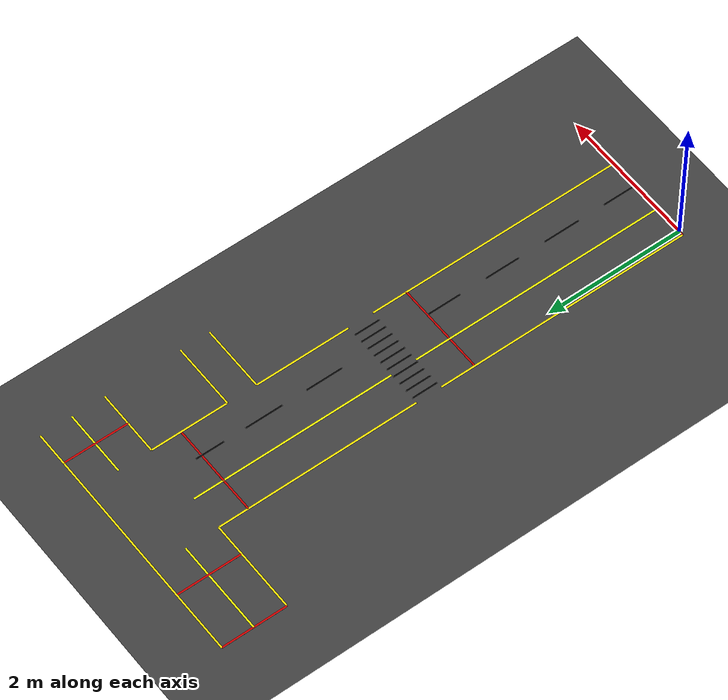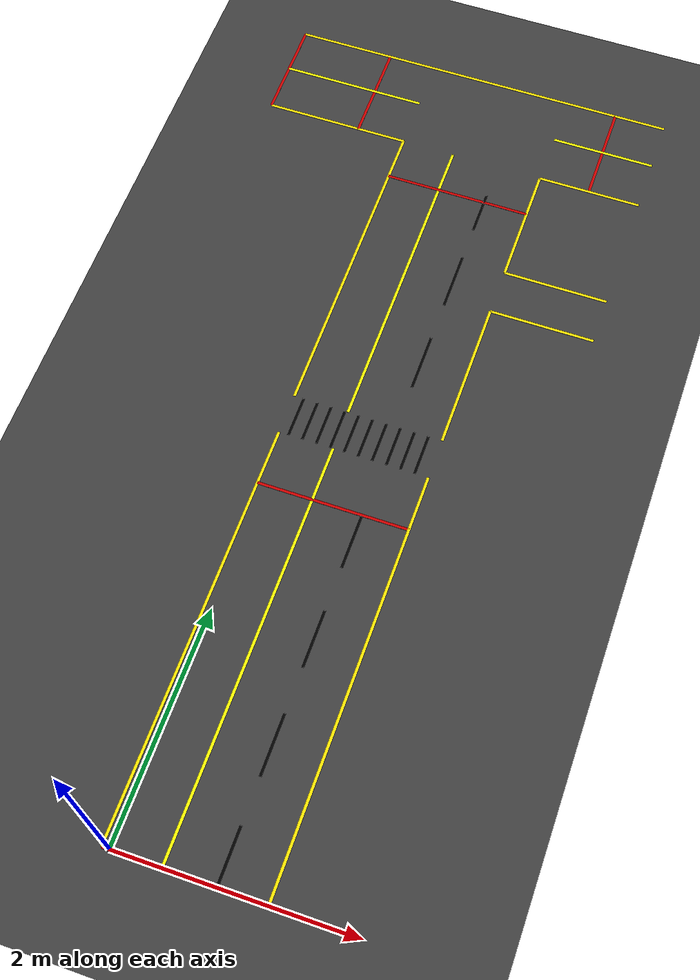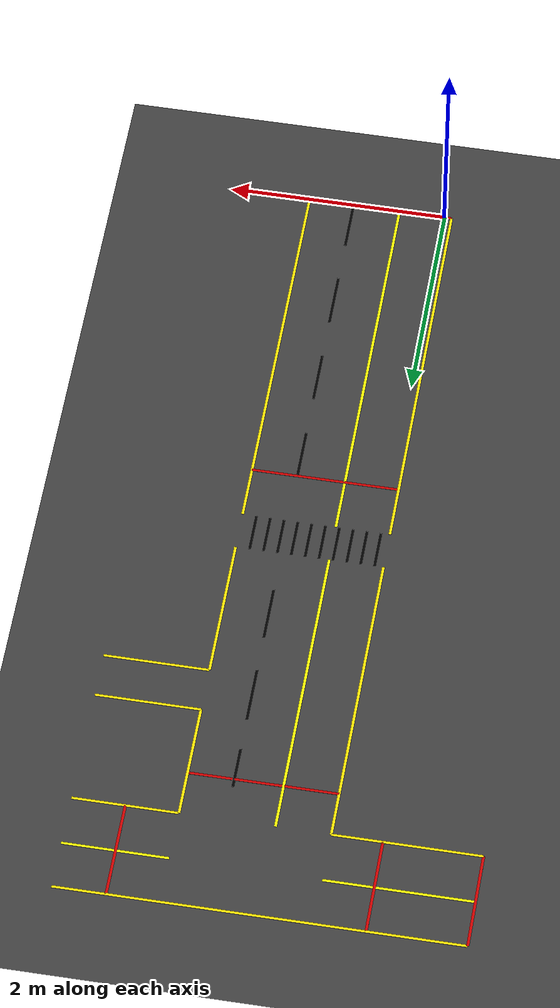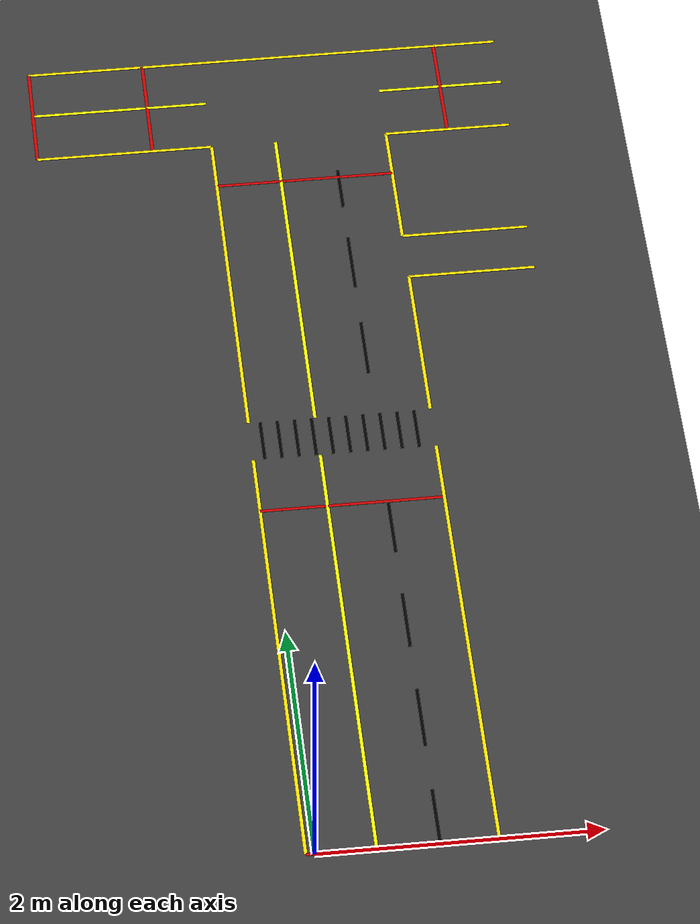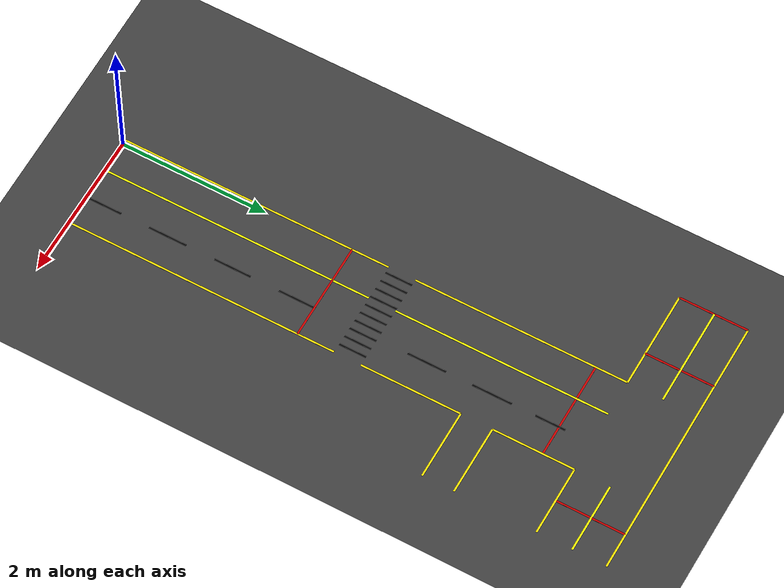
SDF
<sdf version="1.8">
 <world name="agv_track">
  <physics name="default" type="ode">
   <max_step_size>0.001</max_step_size>
   <real_time_factor>1</real_time_factor>
  </physics>
  <plugin filename="gz-sim-physics-system" name="gz::sim::systems::Physics"/>
  <plugin filename="gz-sim-scene-broadcaster-system" name="gz::sim::systems::SceneBroadcaster"/>
  <plugin filename="gz-sim-user-commands-system" name="gz::sim::systems::UserCommands"/>
  <plugin filename="gz-sim-sensors-system" name="gz::sim::systems::Sensors">
   <render_engine>ogre2</render_engine>
  </plugin>
  <light name="sun" type="directional">
   <pose>0 0 10 0 0 0</pose>
   <diffuse>0.9 0.9 0.9 1</diffuse>
   <specular>0.2 0.2 0.2 1</specular>
   <direction>-0.5 0.1 -0.9</direction>
  </light>
  <model name="ground_plane">
   <static>true</static>
   <link name="link">
    <collision name="col"><geometry><plane><normal>0 0 1</normal><size>30 30</size></plane></geometry></collision>
    <visual name="vis">
     <geometry><plane><normal>0 0 1</normal><size>30 30</size></plane></geometry>
     <material><ambient>0.2 0.2 0.2 1</ambient><diffuse>0.25 0.25 0.25 1</diffuse></material>
    </visual>
   </link>
  </model>
  <model name="vert_left_bot">
   <static>true</static>
   <pose>-0.0650 1.8300 0.0005 0 0 0</pose>
   <link name="link">
    <collision name="col"><geometry><box><size>0.0250 3.6600 0.001</size></box></geometry></collision>
    <visual name="vis">
     <geometry><box><size>0.0250 3.6600 0.001</size></box></geometry>
     <material><ambient>1.0 0.9 0.0 1</ambient><diffuse>1.0 0.9 0.0 1</diffuse></material>
    </visual>
   </link>
  </model>
  <model name="vert_left_top">
   <static>true</static>
   <pose>-0.0650 5.4600 0.0005 0 0 0</pose>
   <link name="link">
    <collision name="col"><geometry><box><size>0.0250 2.8700 0.001</size></box></geometry></collision>
    <visual name="vis">
     <geometry><box><size>0.0250 2.8700 0.001</size></box></geometry>
     <material><ambient>1.0 0.9 0.0 1</ambient><diffuse>1.0 0.9 0.0 1</diffuse></material>
    </visual>
   </link>
  </model>
  <model name="vert_right_bot">
   <static>true</static>
   <pose>1.2660 1.8300 0.0005 0 0 0</pose>
   <link name="link">
    <collision name="col"><geometry><box><size>0.0250 3.6600 0.001</size></box></geometry></collision>
    <visual name="vis">
     <geometry><box><size>0.0250 3.6600 0.001</size></box></geometry>
     <material><ambient>1.0 0.9 0.0 1</ambient><diffuse>1.0 0.9 0.0 1</diffuse></material>
    </visual>
   </link>
  </model>
  <model name="vert_right_top_a">
   <static>true</static>
   <pose>1.266 4.7000 0.0005 0 0 0</pose>
   <link name="link">
    <collision name="col"><geometry><box><size>0.025 1.3500 0.001</size></box></geometry></collision>
    <visual name="vis">
     <geometry><box><size>0.025 1.3500 0.001</size></box></geometry>
     <material><ambient>1 0.9 0 1</ambient><diffuse>1 0.9 0 1</diffuse></material>
    </visual>
   </link>
  </model>
  <model name="vert_right_top_b">
   <static>true</static>
   <pose>1.266 6.3475 0.0005 0 0 0</pose>
   <link name="link">
    <collision name="col"><geometry><box><size>0.025 1.0950 0.001</size></box></geometry></collision>
    <visual name="vis">
     <geometry><box><size>0.025 1.0950 0.001</size></box></geometry>
     <material><ambient>1 0.9 0 1</ambient><diffuse>1 0.9 0 1</diffuse></material>
    </visual>
   </link>
  </model>
  <model name="vert_bottom">
   <static>true</static>
   <pose>0.6005 0.0000 0.0005 0 0 0</pose>
   <link name="link">
    <collision name="col"><geometry><box><size>1.3310 0.0250 0.001</size></box></geometry></collision>
    <visual name="vis">
     <geometry><box><size>1.3310 0.0250 0.001</size></box></geometry>
     <material><ambient>0.8 0.0 0.0 1</ambient><diffuse>0.8 0.0 0.0 1</diffuse></material>
    </visual>
   </link>
  </model>
  <model name="horiz_top">
   <static>true</static>
   <pose>0.4100 7.8150 0.0005 0 0 0</pose>
   <link name="link">
    <collision name="col"><geometry><box><size>3.6000 0.0250 0.001</size></box></geometry></collision>
    <visual name="vis">
     <geometry><box><size>3.6000 0.0250 0.001</size></box></geometry>
     <material><ambient>1.0 0.9 0.0 1</ambient><diffuse>1.0 0.9 0.0 1</diffuse></material>
    </visual>
   </link>
  </model>
  <model name="horiz_left">
   <static>true</static>
   <pose>-1.3900 7.3550 0.0005 0 0 0</pose>
   <link name="link">
    <collision name="col"><geometry><box><size>0.0250 0.9200 0.001</size></box></geometry></collision>
    <visual name="vis">
     <geometry><box><size>0.0250 0.9200 0.001</size></box></geometry>
     <material><ambient>0.8 0.0 0.0 1</ambient><diffuse>0.8 0.0 0.0 1</diffuse></material>
    </visual>
   </link>
  </model>
  <model name="horiz_bot_left">
   <static>true</static>
   <pose>-0.7275 6.8950 0.0005 0 0 0</pose>
   <link name="link">
    <collision name="col"><geometry><box><size>1.3250 0.0250 0.001</size></box></geometry></collision>
    <visual name="vis">
     <geometry><box><size>1.3250 0.0250 0.001</size></box></geometry>
     <material><ambient>1.0 0.9 0.0 1</ambient><diffuse>1.0 0.9 0.0 1</diffuse></material>
    </visual>
   </link>
  </model>
  <model name="horiz_bot_right">
   <static>true</static>
   <pose>1.7380 6.8950 0.0005 0 0 0</pose>
   <link name="link">
    <collision name="col"><geometry><box><size>0.9440 0.0250 0.001</size></box></geometry></collision>
    <visual name="vis">
     <geometry><box><size>0.9440 0.0250 0.001</size></box></geometry>
     <material><ambient>1.0 0.9 0.0 1</ambient><diffuse>1.0 0.9 0.0 1</diffuse></material>
    </visual>
   </link>
  </model>
  <model name="right_line1">
   <static>true</static>
   <pose>1.7380 5.3750 0.0005 0 0 0</pose>
   <link name="link">
    <collision name="col"><geometry><box><size>0.9440 0.0250 0.001</size></box></geometry></collision>
    <visual name="vis">
     <geometry><box><size>0.9440 0.0250 0.001</size></box></geometry>
     <material><ambient>1.0 0.9 0.0 1</ambient><diffuse>1.0 0.9 0.0 1</diffuse></material>
    </visual>
   </link>
  </model>
  <model name="right_line2">
   <static>true</static>
   <pose>1.7380 5.8000 0.0005 0 0 0</pose>
   <link name="link">
    <collision name="col"><geometry><box><size>0.9440 0.0250 0.001</size></box></geometry></collision>
    <visual name="vis">
     <geometry><box><size>0.9440 0.0250 0.001</size></box></geometry>
     <material><ambient>1.0 0.9 0.0 1</ambient><diffuse>1.0 0.9 0.0 1</diffuse></material>
    </visual>
   </link>
  </model>
  <model name="vert_inner_bot">
   <static>true</static>
   <pose>0.4220 1.8300 0.0005 0 0 0</pose>
   <link name="link">
    <collision name="col"><geometry><box><size>0.0250 3.6600 0.001</size></box></geometry></collision>
    <visual name="vis">
     <geometry><box><size>0.0250 3.6600 0.001</size></box></geometry>
     <material><ambient>1.0 1.0 0.0 1</ambient><diffuse>1.0 1.0 0.0 1</diffuse></material>
    </visual>
   </link>
  </model>
  <model name="vert_inner_top">
   <static>true</static>
   <pose>0.4220 5.4600 0.0005 0 0 0</pose>
   <link name="link">
    <collision name="col"><geometry><box><size>0.0250 2.8700 0.001</size></box></geometry></collision>
    <visual name="vis">
     <geometry><box><size>0.0250 2.8700 0.001</size></box></geometry>
     <material><ambient>1.0 1.0 0.0 1</ambient><diffuse>1.0 1.0 0.0 1</diffuse></material>
    </visual>
   </link>
  </model>
  <model name="horiz_inner_left">
   <static>true</static>
   <pose>-0.7275 7.3650 0.0005 0 0 0</pose>
   <link name="link">
    <collision name="col"><geometry><box><size>1.3250 0.0250 0.001</size></box></geometry></collision>
    <visual name="vis">
     <geometry><box><size>1.3250 0.0250 0.001</size></box></geometry>
     <material><ambient>1.0 1.0 0.0 1</ambient><diffuse>1.0 1.0 0.0 1</diffuse></material>
    </visual>
   </link>
  </model>
  <model name="horiz_inner_right">
   <static>true</static>
   <pose>1.7380 7.3650 0.0005 0 0 0</pose>
   <link name="link">
    <collision name="col"><geometry><box><size>0.9440 0.0250 0.001</size></box></geometry></collision>
    <visual name="vis">
     <geometry><box><size>0.9440 0.0250 0.001</size></box></geometry>
     <material><ambient>1.0 1.0 0.0 1</ambient><diffuse>1.0 1.0 0.0 1</diffuse></material>
    </visual>
   </link>
  </model>
  <model name="horiz_vert_inner_left">
   <static>true</static>
   <pose>-0.5150 7.3550 0.0005 0 0 0</pose>
   <link name="link">
    <collision name="col"><geometry><box><size>0.0250 0.9200 0.001</size></box></geometry></collision>
    <visual name="vis">
     <geometry><box><size>0.0250 0.9200 0.001</size></box></geometry>
     <material><ambient>0.8 0.0 0.0 1</ambient><diffuse>0.8 0.0 0.0 1</diffuse></material>
    </visual>
   </link>
  </model>
  <model name="horiz_vert_inner_right">
   <static>true</static>
   <pose>1.7350 7.3550 0.0005 0 0 0</pose>
   <link name="link">
    <collision name="col"><geometry><box><size>0.0250 0.9200 0.001</size></box></geometry></collision>
    <visual name="vis">
     <geometry><box><size>0.0250 0.9200 0.001</size></box></geometry>
     <material><ambient>0.8 0.0 0.0 1</ambient><diffuse>0.8 0.0 0.0 1</diffuse></material>
    </visual>
   </link>
  </model>
  <model name="crosswalk_top_line">
   <static>true</static>
   <pose>0.6005 3.1600 0.0005 0 0 0</pose>
   <link name="link">
    <collision name="col"><geometry><box><size>1.3310 0.0250 0.001</size></box></geometry></collision>
    <visual name="vis">
     <geometry><box><size>1.3310 0.0250 0.001</size></box></geometry>
     <material><ambient>0.8 0.0 0.0 1</ambient><diffuse>0.8 0.0 0.0 1</diffuse></material>
    </visual>
   </link>
  </model>
  <model name="crosswalk_bot_line">
   <static>true</static>
   <pose>0.6005 6.4700 0.0005 0 0 0</pose>
   <link name="link">
    <collision name="col"><geometry><box><size>1.3310 0.0250 0.001</size></box></geometry></collision>
    <visual name="vis">
     <geometry><box><size>1.3310 0.0250 0.001</size></box></geometry>
     <material><ambient>0.8 0.0 0.0 1</ambient><diffuse>0.8 0.0 0.0 1</diffuse></material>
    </visual>
   </link>
  </model>
  <model name="crosswalk_01">
   <static>true</static>
   <pose>0.0175 3.8425 0.0005 0 0 0</pose>
   <link name="link">
    <collision name="col"><geometry><box><size>0.025 0.365 0.001</size></box></geometry></collision>
    <visual name="vis">
     <geometry><box><size>0.025 0.365 0.001</size></box></geometry>
     <material><ambient>0 0 0 1</ambient><diffuse>0 0 0 1</diffuse></material>
    </visual>
   </link>
  </model>
  <model name="crosswalk_02">
   <static>true</static>
   <pose>0.1425 3.8425 0.0005 0 0 0</pose>
   <link name="link">
    <collision name="col"><geometry><box><size>0.025 0.365 0.001</size></box></geometry></collision>
    <visual name="vis">
     <geometry><box><size>0.025 0.365 0.001</size></box></geometry>
     <material><ambient>0 0 0 1</ambient><diffuse>0 0 0 1</diffuse></material>
    </visual>
   </link>
  </model>
  <model name="crosswalk_03">
   <static>true</static>
   <pose>0.2675 3.8425 0.0005 0 0 0</pose>
   <link name="link">
    <collision name="col"><geometry><box><size>0.025 0.365 0.001</size></box></geometry></collision>
    <visual name="vis">
     <geometry><box><size>0.025 0.365 0.001</size></box></geometry>
     <material><ambient>0 0 0 1</ambient><diffuse>0 0 0 1</diffuse></material>
    </visual>
   </link>
  </model>
  <model name="crosswalk_04">
   <static>true</static>
   <pose>0.3925 3.8425 0.0005 0 0 0</pose>
   <link name="link">
    <collision name="col"><geometry><box><size>0.025 0.365 0.001</size></box></geometry></collision>
    <visual name="vis">
     <geometry><box><size>0.025 0.365 0.001</size></box></geometry>
     <material><ambient>0 0 0 1</ambient><diffuse>0 0 0 1</diffuse></material>
    </visual>
   </link>
  </model>
  <model name="crosswalk_05">
   <static>true</static>
   <pose>0.5175 3.8425 0.0005 0 0 0</pose>
   <link name="link">
    <collision name="col"><geometry><box><size>0.025 0.365 0.001</size></box></geometry></collision>
    <visual name="vis">
     <geometry><box><size>0.025 0.365 0.001</size></box></geometry>
     <material><ambient>0 0 0 1</ambient><diffuse>0 0 0 1</diffuse></material>
    </visual>
   </link>
  </model>
  <model name="crosswalk_06">
   <static>true</static>
   <pose>0.6425 3.8425 0.0005 0 0 0</pose>
   <link name="link">
    <collision name="col"><geometry><box><size>0.025 0.365 0.001</size></box></geometry></collision>
    <visual name="vis">
     <geometry><box><size>0.025 0.365 0.001</size></box></geometry>
     <material><ambient>0 0 0 1</ambient><diffuse>0 0 0 1</diffuse></material>
    </visual>
   </link>
  </model>
  <model name="crosswalk_07">
   <static>true</static>
   <pose>0.7675 3.8425 0.0005 0 0 0</pose>
   <link name="link">
    <collision name="col"><geometry><box><size>0.025 0.365 0.001</size></box></geometry></collision>
    <visual name="vis">
     <geometry><box><size>0.025 0.365 0.001</size></box></geometry>
     <material><ambient>0 0 0 1</ambient><diffuse>0 0 0 1</diffuse></material>
    </visual>
   </link>
  </model>
  <model name="crosswalk_08">
   <static>true</static>
   <pose>0.8925 3.8425 0.0005 0 0 0</pose>
   <link name="link">
    <collision name="col"><geometry><box><size>0.025 0.365 0.001</size></box></geometry></collision>
    <visual name="vis">
     <geometry><box><size>0.025 0.365 0.001</size></box></geometry>
     <material><ambient>0 0 0 1</ambient><diffuse>0 0 0 1</diffuse></material>
    </visual>
   </link>
  </model>
  <model name="crosswalk_09">
   <static>true</static>
   <pose>1.0175 3.8425 0.0005 0 0 0</pose>
   <link name="link">
    <collision name="col"><geometry><box><size>0.025 0.365 0.001</size></box></geometry></collision>
    <visual name="vis">
     <geometry><box><size>0.025 0.365 0.001</size></box></geometry>
     <material><ambient>0 0 0 1</ambient><diffuse>0 0 0 1</diffuse></material>
    </visual>
   </link>
  </model>
  <model name="crosswalk_10">
   <static>true</static>
   <pose>1.1425 3.8425 0.0005 0 0 0</pose>
   <link name="link">
    <collision name="col"><geometry><box><size>0.025 0.365 0.001</size></box></geometry></collision>
    <visual name="vis">
     <geometry><box><size>0.025 0.365 0.001</size></box></geometry>
     <material><ambient>0 0 0 1</ambient><diffuse>0 0 0 1</diffuse></material>
    </visual>
   </link>
  </model>
  <model name="dash_01">
   <static>true</static>
   <pose>0.8565 0.2400 0.0005 0 0 0</pose>
   <link name="link">
    <collision name="col"><geometry><box><size>0.0250 0.4800 0.001</size></box></geometry></collision>
    <visual name="vis">
     <geometry><box><size>0.0250 0.4800 0.001</size></box></geometry>
     <material><ambient>0 0 0 1</ambient><diffuse>0 0 0 1</diffuse></material>
    </visual>
   </link>
  </model>
  <model name="dash_02">
   <static>true</static>
   <pose>0.8565 1.1300 0.0005 0 0 0</pose>
   <link name="link">
    <collision name="col"><geometry><box><size>0.0250 0.5200 0.001</size></box></geometry></collision>
    <visual name="vis">
     <geometry><box><size>0.0250 0.5200 0.001</size></box></geometry>
     <material><ambient>0 0 0 1</ambient><diffuse>0 0 0 1</diffuse></material>
    </visual>
   </link>
  </model>
  <model name="dash_03">
   <static>true</static>
   <pose>0.8565 2.0300 0.0005 0 0 0</pose>
   <link name="link">
    <collision name="col"><geometry><box><size>0.0250 0.5000 0.001</size></box></geometry></collision>
    <visual name="vis">
     <geometry><box><size>0.0250 0.5000 0.001</size></box></geometry>
     <material><ambient>0 0 0 1</ambient><diffuse>0 0 0 1</diffuse></material>
    </visual>
   </link>
  </model>
  <model name="dash_04">
   <static>true</static>
   <pose>0.8565 2.9100 0.0005 0 0 0</pose>
   <link name="link">
    <collision name="col"><geometry><box><size>0.0250 0.4800 0.001</size></box></geometry></collision>
    <visual name="vis">
     <geometry><box><size>0.0250 0.4800 0.001</size></box></geometry>
     <material><ambient>0 0 0 1</ambient><diffuse>0 0 0 1</diffuse></material>
    </visual>
   </link>
  </model>
  <model name="dash_05">
   <static>true</static>
   <pose>0.8565 4.6900 0.0005 0 0 0</pose>
   <link name="link">
    <collision name="col"><geometry><box><size>0.0250 0.5200 0.001</size></box></geometry></collision>
    <visual name="vis">
     <geometry><box><size>0.0250 0.5200 0.001</size></box></geometry>
     <material><ambient>0 0 0 1</ambient><diffuse>0 0 0 1</diffuse></material>
    </visual>
   </link>
  </model>
  <model name="dash_06">
   <static>true</static>
   <pose>0.8565 5.570 0.0005 0 0 0</pose>
   <link name="link">
    <collision name="col"><geometry><box><size>0.0250 0.5300 0.001</size></box></geometry></collision>
    <visual name="vis">
     <geometry><box><size>0.0250 0.5300 0.001</size></box></geometry>
     <material><ambient>0 0 0 1</ambient><diffuse>0 0 0 1</diffuse></material>
    </visual>
   </link>
  </model>
  <model name="dash_07">
   <static>true</static>
   <pose>0.8565 6.350 0.0005 0 0 0</pose>
   <link name="link">
    <collision name="col"><geometry><box><size>0.0250 0.400 0.001</size></box></geometry></collision>
    <visual name="vis">
     <geometry><box><size>0.0250 0.4000 0.001</size></box></geometry>
     <material><ambient>0 0 0 1</ambient><diffuse>0 0 0 1</diffuse></material>
    </visual>
   </link>
  </model>
 </world>
</sdf>
